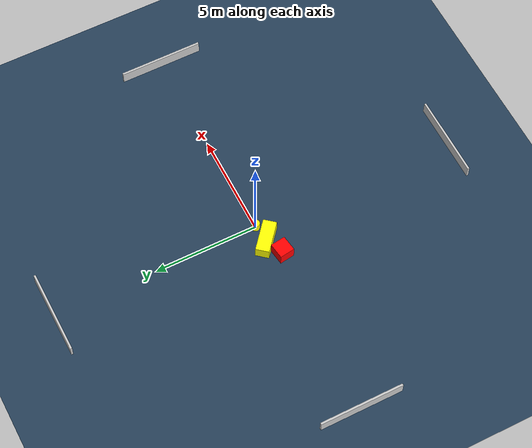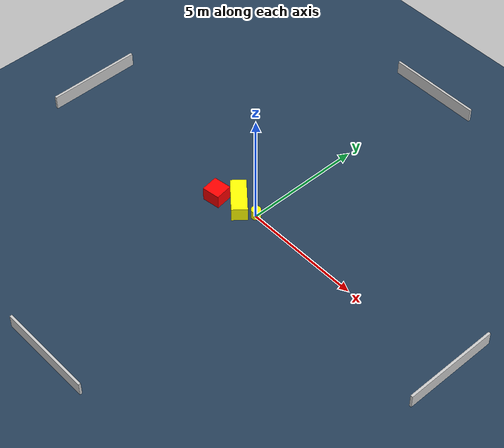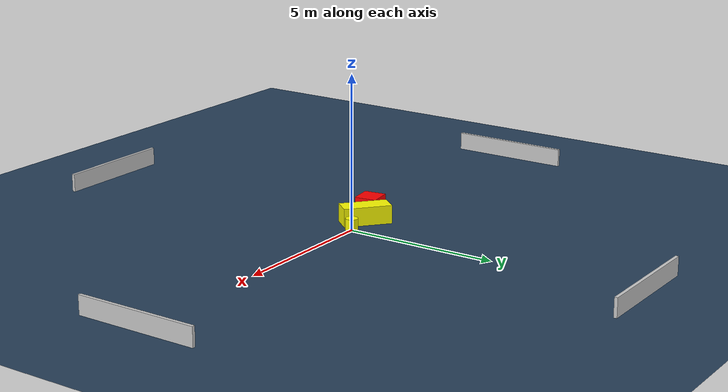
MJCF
<?xml version="1.0" ?>
<mujoco model="generated_environment">
  <option timestep="0.01" integrator="RK4" cone="elliptic"/>
  <default>
    <geom density="1"/>
  </default>
  <asset>
    <texture builtin="gradient" height="3072" name="skybox" rgb1="0.3 0.5 0.7" rgb2="0 0 0" type="skybox" width="512"/>
    <texture builtin="checker" height="300" name="groundplane" rgb1="0.2 0.3 0.4" rgb2="0.1 0.2 0.3" type="2d" width="300"/>
    <material name="groundplane" reflectance="0.2" texrepeat="5 5" texture="groundplane"/>
  </asset>
  <worldbody>
    <light dir="0 0 -1" directional="true" pos="0 0 1.5"/>
    <geom condim="3" friction="0.5 0.005 0.001" material="groundplane" name="floor" pos="0 0 0" size="0 0 0.05" type="plane"/>
    <body name="walls">
      <geom name="wall_1" condim="4" pos="-10.0 0.0 0.3" rgba="0.800000011920929 0.800000011920929 0.800000011920929 1.0" size="0.05 2.0 0.3" type="box"/>
      <geom name="wall_2" condim="4" pos="10.0 0.0 0.3" rgba="0.800000011920929 0.800000011920929 0.800000011920929 1.0" size="0.05 2.0 0.3" type="box"/>
      <geom name="wall_3" condim="4" pos="0.0 -10.0 0.3" rgba="0.800000011920929 0.800000011920929 0.800000011920929 1.0" size="2.0 0.05 0.3" type="box"/>
      <geom name="wall_4" condim="4" pos="0.0 10.0 0.3" rgba="0.800000011920929 0.800000011920929 0.800000011920929 1.0" size="2.0 0.05 0.3" type="box"/>
    </body>
    <body name="robot">
      <joint name="joint_x" type="slide" pos="0 0 0" axis="1 0 0"/>
      <joint name="joint_y" type="slide" pos="0 0 0" axis="0 1 0"/>
      <geom name="robot" type="cylinder" pos="0.0 0.0 0.2" size="0.2 0.2 0.0" mass="5.0" friction="1.0 0.005 0.0001" condim="4" rgba="1.0 1.0 0.0 1.0"/>
    </body>
    <body name="obstacle_1_movable">
      <geom name="obstacle_1_movable" condim="4" pos="-0.8860573499710026 -0.08868521331193185 0.3" euler="0 0 49.94152523550453" friction="0.0 0.005 0.001" rgba="1.0 1.0 0.0 1.0" size="0.3212675356260474 0.7855014857443285 0.3" type="box" mass="0.1"/>
      <joint type="free"/>
    </body>
    <body name="obstacle_2_static">
      <geom name="obstacle_2_static" condim="4" pos="-1.7367306681591848 -0.47697273692277414 0.3" euler="0 0 98.2021080936582" friction="0.0 0.005 0.001" rgba="1.0 0.0 0.0 1.0" size="0.36176648639248243 0.37827426270529474 0.3" type="box"/>
    </body>
  </worldbody>
  <actuator>
    <motor name="actuator_x" joint="joint_x" gear="1" ctrlrange="-1 1"/>
    <motor name="actuator_y" joint="joint_y" gear="1" ctrlrange="-1 1"/>
  </actuator>
</mujoco>
